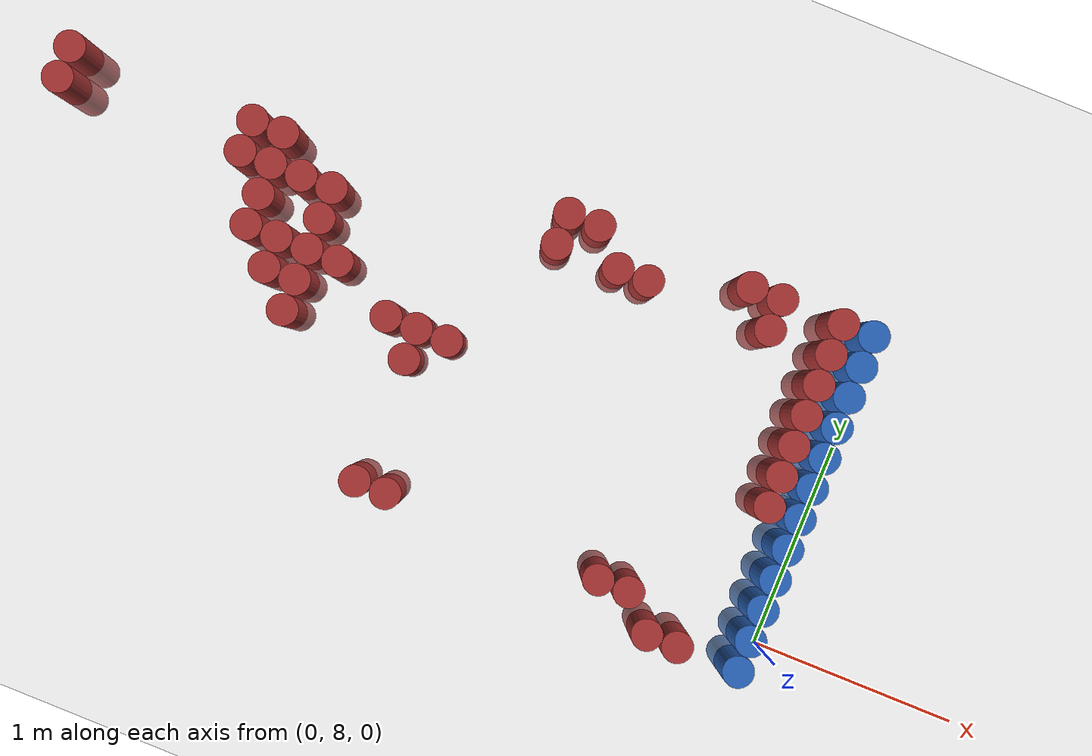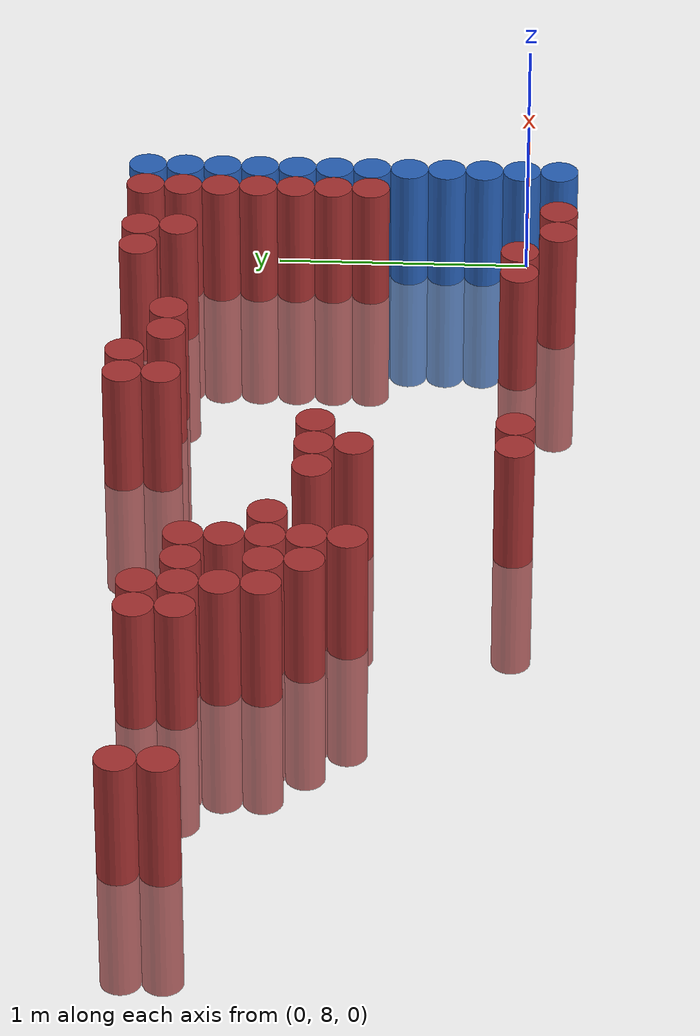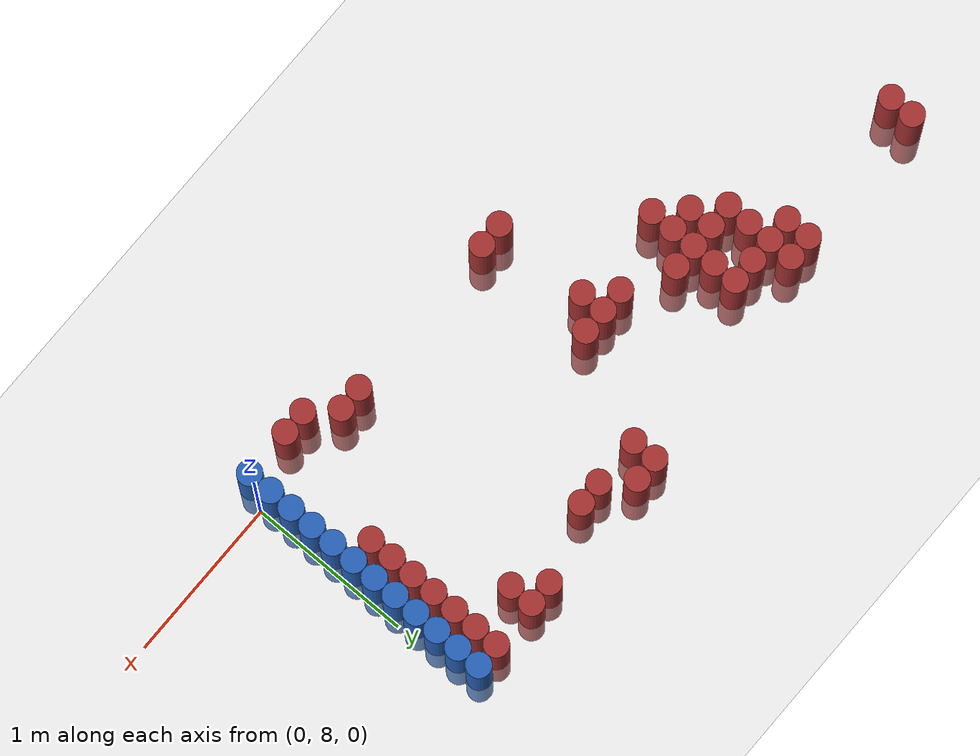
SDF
<sdf version="1.6">
 <world name="default">
  <model name="ground_plane">
   <static>1</static>
   <link name="link">
    <collision name="collision">
     <geometry><plane><normal>0 0 1</normal><size>100 100</size></plane></geometry>
     <surface><friction><ode><mu>100</mu><mu2>50</mu2></ode></friction></surface>
    </collision>
    <visual name="visual">
     <cast_shadows>0</cast_shadows>
     <geometry><plane><normal>0 0 1</normal><size>100 100</size></plane></geometry>
     <material>
      <script><uri>file://media/materials/scripts/gazebo.material</uri><name>Gazebo/Grey</name></script>
     </material>
    </visual>
   </link>
  </model>
  <model name="unit_cylinder_156">
   <static>1</static>
   <pose>-3.975000 9.225000 0.000000 0.000000 0.000000 0.000000</pose>
   <link name="link">
    <inertial>
     <mass>1</mass>
     <inertia><ixx>0.145833</ixx><ixy>0</ixy><ixz>0</ixz><iyy>0.145833</iyy><iyz>0</iyz><izz>0.125</izz></inertia>
    </inertial>
    <collision name="collision">
     <geometry><cylinder><radius>0.075000</radius><length>1</length></cylinder></geometry>
    </collision>
    <visual name="visual">
     <geometry><cylinder><radius>0.075000</radius><length>1</length></cylinder></geometry>
     <material>
      <ambient>0.648000 0.192000 0.192000 1</ambient>
      <diffuse>0.648000 0.192000 0.192000 1</diffuse>
     </material>
     <material>
      <script><name>Gazebo/Grey</name><uri>file://media/materials/scripts/gazebo.material</uri></script>
     </material>
    </visual>
   </link>
  </model>
  <model name="unit_cylinder_157">
   <static>1</static>
   <pose>-3.975000 9.375000 0.000000 0.000000 0.000000 0.000000</pose>
   <link name="link">
    <inertial>
     <mass>1</mass>
     <inertia><ixx>0.145833</ixx><ixy>0</ixy><ixz>0</ixz><iyy>0.145833</iyy><iyz>0</iyz><izz>0.125</izz></inertia>
    </inertial>
    <collision name="collision">
     <geometry><cylinder><radius>0.075000</radius><length>1</length></cylinder></geometry>
    </collision>
    <visual name="visual">
     <geometry><cylinder><radius>0.075000</radius><length>1</length></cylinder></geometry>
     <material>
      <ambient>0.648000 0.192000 0.192000 1</ambient>
      <diffuse>0.648000 0.192000 0.192000 1</diffuse>
     </material>
     <material>
      <script><name>Gazebo/Grey</name><uri>file://media/materials/scripts/gazebo.material</uri></script>
     </material>
    </visual>
   </link>
  </model>
  <model name="unit_cylinder_171">
   <static>1</static>
   <pose>-3.075000 9.225000 0.000000 0.000000 0.000000 0.000000</pose>
   <link name="link">
    <inertial>
     <mass>1</mass>
     <inertia><ixx>0.145833</ixx><ixy>0</ixy><ixz>0</ixz><iyy>0.145833</iyy><iyz>0</iyz><izz>0.125</izz></inertia>
    </inertial>
    <collision name="collision">
     <geometry><cylinder><radius>0.075000</radius><length>1</length></cylinder></geometry>
    </collision>
    <visual name="visual">
     <geometry><cylinder><radius>0.075000</radius><length>1</length></cylinder></geometry>
     <material>
      <ambient>0.648000 0.192000 0.192000 1</ambient>
      <diffuse>0.648000 0.192000 0.192000 1</diffuse>
     </material>
     <material>
      <script><name>Gazebo/Grey</name><uri>file://media/materials/scripts/gazebo.material</uri></script>
     </material>
    </visual>
   </link>
  </model>
  <model name="unit_cylinder_172">
   <static>1</static>
   <pose>-3.075000 9.375000 0.000000 0.000000 0.000000 0.000000</pose>
   <link name="link">
    <inertial>
     <mass>1</mass>
     <inertia><ixx>0.145833</ixx><ixy>0</ixy><ixz>0</ixz><iyy>0.145833</iyy><iyz>0</iyz><izz>0.125</izz></inertia>
    </inertial>
    <collision name="collision">
     <geometry><cylinder><radius>0.075000</radius><length>1</length></cylinder></geometry>
    </collision>
    <visual name="visual">
     <geometry><cylinder><radius>0.075000</radius><length>1</length></cylinder></geometry>
     <material>
      <ambient>0.648000 0.192000 0.192000 1</ambient>
      <diffuse>0.648000 0.192000 0.192000 1</diffuse>
     </material>
     <material>
      <script><name>Gazebo/Grey</name><uri>file://media/materials/scripts/gazebo.material</uri></script>
     </material>
    </visual>
   </link>
  </model>
  <model name="unit_cylinder_173">
   <static>1</static>
   <pose>-2.925000 8.925000 0.000000 0.000000 0.000000 0.000000</pose>
   <link name="link">
    <inertial>
     <mass>1</mass>
     <inertia><ixx>0.145833</ixx><ixy>0</ixy><ixz>0</ixz><iyy>0.145833</iyy><iyz>0</iyz><izz>0.125</izz></inertia>
    </inertial>
    <collision name="collision">
     <geometry><cylinder><radius>0.075000</radius><length>1</length></cylinder></geometry>
    </collision>
    <visual name="visual">
     <geometry><cylinder><radius>0.075000</radius><length>1</length></cylinder></geometry>
     <material>
      <ambient>0.648000 0.192000 0.192000 1</ambient>
      <diffuse>0.648000 0.192000 0.192000 1</diffuse>
     </material>
     <material>
      <script><name>Gazebo/Grey</name><uri>file://media/materials/scripts/gazebo.material</uri></script>
     </material>
    </visual>
   </link>
  </model>
  <model name="unit_cylinder_174">
   <static>1</static>
   <pose>-2.925000 9.075000 0.000000 0.000000 0.000000 0.000000</pose>
   <link name="link">
    <inertial>
     <mass>1</mass>
     <inertia><ixx>0.145833</ixx><ixy>0</ixy><ixz>0</ixz><iyy>0.145833</iyy><iyz>0</iyz><izz>0.125</izz></inertia>
    </inertial>
    <collision name="collision">
     <geometry><cylinder><radius>0.075000</radius><length>1</length></cylinder></geometry>
    </collision>
    <visual name="visual">
     <geometry><cylinder><radius>0.075000</radius><length>1</length></cylinder></geometry>
     <material>
      <ambient>0.648000 0.192000 0.192000 1</ambient>
      <diffuse>0.648000 0.192000 0.192000 1</diffuse>
     </material>
     <material>
      <script><name>Gazebo/Grey</name><uri>file://media/materials/scripts/gazebo.material</uri></script>
     </material>
    </visual>
   </link>
  </model>
  <model name="unit_cylinder_175">
   <static>1</static>
   <pose>-2.925000 9.225000 0.000000 0.000000 0.000000 0.000000</pose>
   <link name="link">
    <inertial>
     <mass>1</mass>
     <inertia><ixx>0.145833</ixx><ixy>0</ixy><ixz>0</ixz><iyy>0.145833</iyy><iyz>0</iyz><izz>0.125</izz></inertia>
    </inertial>
    <collision name="collision">
     <geometry><cylinder><radius>0.075000</radius><length>1</length></cylinder></geometry>
    </collision>
    <visual name="visual">
     <geometry><cylinder><radius>0.075000</radius><length>1</length></cylinder></geometry>
     <material>
      <ambient>0.648000 0.192000 0.192000 1</ambient>
      <diffuse>0.648000 0.192000 0.192000 1</diffuse>
     </material>
     <material>
      <script><name>Gazebo/Grey</name><uri>file://media/materials/scripts/gazebo.material</uri></script>
     </material>
    </visual>
   </link>
  </model>
  <model name="unit_cylinder_176">
   <static>1</static>
   <pose>-2.925000 9.375000 0.000000 0.000000 0.000000 0.000000</pose>
   <link name="link">
    <inertial>
     <mass>1</mass>
     <inertia><ixx>0.145833</ixx><ixy>0</ixy><ixz>0</ixz><iyy>0.145833</iyy><iyz>0</iyz><izz>0.125</izz></inertia>
    </inertial>
    <collision name="collision">
     <geometry><cylinder><radius>0.075000</radius><length>1</length></cylinder></geometry>
    </collision>
    <visual name="visual">
     <geometry><cylinder><radius>0.075000</radius><length>1</length></cylinder></geometry>
     <material>
      <ambient>0.648000 0.192000 0.192000 1</ambient>
      <diffuse>0.648000 0.192000 0.192000 1</diffuse>
     </material>
     <material>
      <script><name>Gazebo/Grey</name><uri>file://media/materials/scripts/gazebo.material</uri></script>
     </material>
    </visual>
   </link>
  </model>
  <model name="unit_cylinder_178">
   <static>1</static>
   <pose>-2.775000 8.775000 0.000000 0.000000 0.000000 0.000000</pose>
   <link name="link">
    <inertial>
     <mass>1</mass>
     <inertia><ixx>0.145833</ixx><ixy>0</ixy><ixz>0</ixz><iyy>0.145833</iyy><iyz>0</iyz><izz>0.125</izz></inertia>
    </inertial>
    <collision name="collision">
     <geometry><cylinder><radius>0.075000</radius><length>1</length></cylinder></geometry>
    </collision>
    <visual name="visual">
     <geometry><cylinder><radius>0.075000</radius><length>1</length></cylinder></geometry>
     <material>
      <ambient>0.648000 0.192000 0.192000 1</ambient>
      <diffuse>0.648000 0.192000 0.192000 1</diffuse>
     </material>
     <material>
      <script><name>Gazebo/Grey</name><uri>file://media/materials/scripts/gazebo.material</uri></script>
     </material>
    </visual>
   </link>
  </model>
  <model name="unit_cylinder_179">
   <static>1</static>
   <pose>-2.775000 8.925000 0.000000 0.000000 0.000000 0.000000</pose>
   <link name="link">
    <inertial>
     <mass>1</mass>
     <inertia><ixx>0.145833</ixx><ixy>0</ixy><ixz>0</ixz><iyy>0.145833</iyy><iyz>0</iyz><izz>0.125</izz></inertia>
    </inertial>
    <collision name="collision">
     <geometry><cylinder><radius>0.075000</radius><length>1</length></cylinder></geometry>
    </collision>
    <visual name="visual">
     <geometry><cylinder><radius>0.075000</radius><length>1</length></cylinder></geometry>
     <material>
      <ambient>0.648000 0.192000 0.192000 1</ambient>
      <diffuse>0.648000 0.192000 0.192000 1</diffuse>
     </material>
     <material>
      <script><name>Gazebo/Grey</name><uri>file://media/materials/scripts/gazebo.material</uri></script>
     </material>
    </visual>
   </link>
  </model>
  <model name="unit_cylinder_180">
   <static>1</static>
   <pose>-2.775000 9.225000 0.000000 0.000000 0.000000 0.000000</pose>
   <link name="link">
    <inertial>
     <mass>1</mass>
     <inertia><ixx>0.145833</ixx><ixy>0</ixy><ixz>0</ixz><iyy>0.145833</iyy><iyz>0</iyz><izz>0.125</izz></inertia>
    </inertial>
    <collision name="collision">
     <geometry><cylinder><radius>0.075000</radius><length>1</length></cylinder></geometry>
    </collision>
    <visual name="visual">
     <geometry><cylinder><radius>0.075000</radius><length>1</length></cylinder></geometry>
     <material>
      <ambient>0.648000 0.192000 0.192000 1</ambient>
      <diffuse>0.648000 0.192000 0.192000 1</diffuse>
     </material>
     <material>
      <script><name>Gazebo/Grey</name><uri>file://media/materials/scripts/gazebo.material</uri></script>
     </material>
    </visual>
   </link>
  </model>
  <model name="unit_cylinder_182">
   <static>1</static>
   <pose>-2.625000 8.625000 0.000000 0.000000 0.000000 0.000000</pose>
   <link name="link">
    <inertial>
     <mass>1</mass>
     <inertia><ixx>0.145833</ixx><ixy>0</ixy><ixz>0</ixz><iyy>0.145833</iyy><iyz>0</iyz><izz>0.125</izz></inertia>
    </inertial>
    <collision name="collision">
     <geometry><cylinder><radius>0.075000</radius><length>1</length></cylinder></geometry>
    </collision>
    <visual name="visual">
     <geometry><cylinder><radius>0.075000</radius><length>1</length></cylinder></geometry>
     <material>
      <ambient>0.648000 0.192000 0.192000 1</ambient>
      <diffuse>0.648000 0.192000 0.192000 1</diffuse>
     </material>
     <material>
      <script><name>Gazebo/Grey</name><uri>file://media/materials/scripts/gazebo.material</uri></script>
     </material>
    </visual>
   </link>
  </model>
  <model name="unit_cylinder_183">
   <static>1</static>
   <pose>-2.625000 8.775000 0.000000 0.000000 0.000000 0.000000</pose>
   <link name="link">
    <inertial>
     <mass>1</mass>
     <inertia><ixx>0.145833</ixx><ixy>0</ixy><ixz>0</ixz><iyy>0.145833</iyy><iyz>0</iyz><izz>0.125</izz></inertia>
    </inertial>
    <collision name="collision">
     <geometry><cylinder><radius>0.075000</radius><length>1</length></cylinder></geometry>
    </collision>
    <visual name="visual">
     <geometry><cylinder><radius>0.075000</radius><length>1</length></cylinder></geometry>
     <material>
      <ambient>0.648000 0.192000 0.192000 1</ambient>
      <diffuse>0.648000 0.192000 0.192000 1</diffuse>
     </material>
     <material>
      <script><name>Gazebo/Grey</name><uri>file://media/materials/scripts/gazebo.material</uri></script>
     </material>
    </visual>
   </link>
  </model>
  <model name="unit_cylinder_184">
   <static>1</static>
   <pose>-2.625000 8.925000 0.000000 0.000000 0.000000 0.000000</pose>
   <link name="link">
    <inertial>
     <mass>1</mass>
     <inertia><ixx>0.145833</ixx><ixy>0</ixy><ixz>0</ixz><iyy>0.145833</iyy><iyz>0</iyz><izz>0.125</izz></inertia>
    </inertial>
    <collision name="collision">
     <geometry><cylinder><radius>0.075000</radius><length>1</length></cylinder></geometry>
    </collision>
    <visual name="visual">
     <geometry><cylinder><radius>0.075000</radius><length>1</length></cylinder></geometry>
     <material>
      <ambient>0.648000 0.192000 0.192000 1</ambient>
      <diffuse>0.648000 0.192000 0.192000 1</diffuse>
     </material>
     <material>
      <script><name>Gazebo/Grey</name><uri>file://media/materials/scripts/gazebo.material</uri></script>
     </material>
    </visual>
   </link>
  </model>
  <model name="unit_cylinder_185">
   <static>1</static>
   <pose>-2.625000 9.075000 0.000000 0.000000 0.000000 0.000000</pose>
   <link name="link">
    <inertial>
     <mass>1</mass>
     <inertia><ixx>0.145833</ixx><ixy>0</ixy><ixz>0</ixz><iyy>0.145833</iyy><iyz>0</iyz><izz>0.125</izz></inertia>
    </inertial>
    <collision name="collision">
     <geometry><cylinder><radius>0.075000</radius><length>1</length></cylinder></geometry>
    </collision>
    <visual name="visual">
     <geometry><cylinder><radius>0.075000</radius><length>1</length></cylinder></geometry>
     <material>
      <ambient>0.648000 0.192000 0.192000 1</ambient>
      <diffuse>0.648000 0.192000 0.192000 1</diffuse>
     </material>
     <material>
      <script><name>Gazebo/Grey</name><uri>file://media/materials/scripts/gazebo.material</uri></script>
     </material>
    </visual>
   </link>
  </model>
  <model name="unit_cylinder_186">
   <static>1</static>
   <pose>-2.625000 9.225000 0.000000 0.000000 0.000000 0.000000</pose>
   <link name="link">
    <inertial>
     <mass>1</mass>
     <inertia><ixx>0.145833</ixx><ixy>0</ixy><ixz>0</ixz><iyy>0.145833</iyy><iyz>0</iyz><izz>0.125</izz></inertia>
    </inertial>
    <collision name="collision">
     <geometry><cylinder><radius>0.075000</radius><length>1</length></cylinder></geometry>
    </collision>
    <visual name="visual">
     <geometry><cylinder><radius>0.075000</radius><length>1</length></cylinder></geometry>
     <material>
      <ambient>0.648000 0.192000 0.192000 1</ambient>
      <diffuse>0.648000 0.192000 0.192000 1</diffuse>
     </material>
     <material>
      <script><name>Gazebo/Grey</name><uri>file://media/materials/scripts/gazebo.material</uri></script>
     </material>
    </visual>
   </link>
  </model>
  <model name="unit_cylinder_187">
   <static>1</static>
   <pose>-2.475000 8.925000 0.000000 0.000000 0.000000 0.000000</pose>
   <link name="link">
    <inertial>
     <mass>1</mass>
     <inertia><ixx>0.145833</ixx><ixy>0</ixy><ixz>0</ixz><iyy>0.145833</iyy><iyz>0</iyz><izz>0.125</izz></inertia>
    </inertial>
    <collision name="collision">
     <geometry><cylinder><radius>0.075000</radius><length>1</length></cylinder></geometry>
    </collision>
    <visual name="visual">
     <geometry><cylinder><radius>0.075000</radius><length>1</length></cylinder></geometry>
     <material>
      <ambient>0.648000 0.192000 0.192000 1</ambient>
      <diffuse>0.648000 0.192000 0.192000 1</diffuse>
     </material>
     <material>
      <script><name>Gazebo/Grey</name><uri>file://media/materials/scripts/gazebo.material</uri></script>
     </material>
    </visual>
   </link>
  </model>
  <model name="unit_cylinder_189">
   <static>1</static>
   <pose>-2.175000 8.775000 0.000000 0.000000 0.000000 0.000000</pose>
   <link name="link">
    <inertial>
     <mass>1</mass>
     <inertia><ixx>0.145833</ixx><ixy>0</ixy><ixz>0</ixz><iyy>0.145833</iyy><iyz>0</iyz><izz>0.125</izz></inertia>
    </inertial>
    <collision name="collision">
     <geometry><cylinder><radius>0.075000</radius><length>1</length></cylinder></geometry>
    </collision>
    <visual name="visual">
     <geometry><cylinder><radius>0.075000</radius><length>1</length></cylinder></geometry>
     <material>
      <ambient>0.648000 0.192000 0.192000 1</ambient>
      <diffuse>0.648000 0.192000 0.192000 1</diffuse>
     </material>
     <material>
      <script><name>Gazebo/Grey</name><uri>file://media/materials/scripts/gazebo.material</uri></script>
     </material>
    </visual>
   </link>
  </model>
  <model name="unit_cylinder_191">
   <static>1</static>
   <pose>-2.025000 8.025000 0.000000 0.000000 0.000000 0.000000</pose>
   <link name="link">
    <inertial>
     <mass>1</mass>
     <inertia><ixx>0.145833</ixx><ixy>0</ixy><ixz>0</ixz><iyy>0.145833</iyy><iyz>0</iyz><izz>0.125</izz></inertia>
    </inertial>
    <collision name="collision">
     <geometry><cylinder><radius>0.075000</radius><length>1</length></cylinder></geometry>
    </collision>
    <visual name="visual">
     <geometry><cylinder><radius>0.075000</radius><length>1</length></cylinder></geometry>
     <material>
      <ambient>0.648000 0.192000 0.192000 1</ambient>
      <diffuse>0.648000 0.192000 0.192000 1</diffuse>
     </material>
     <material>
      <script><name>Gazebo/Grey</name><uri>file://media/materials/scripts/gazebo.material</uri></script>
     </material>
    </visual>
   </link>
  </model>
  <model name="unit_cylinder_192">
   <static>1</static>
   <pose>-2.025000 8.625000 0.000000 0.000000 0.000000 0.000000</pose>
   <link name="link">
    <inertial>
     <mass>1</mass>
     <inertia><ixx>0.145833</ixx><ixy>0</ixy><ixz>0</ixz><iyy>0.145833</iyy><iyz>0</iyz><izz>0.125</izz></inertia>
    </inertial>
    <collision name="collision">
     <geometry><cylinder><radius>0.075000</radius><length>1</length></cylinder></geometry>
    </collision>
    <visual name="visual">
     <geometry><cylinder><radius>0.075000</radius><length>1</length></cylinder></geometry>
     <material>
      <ambient>0.648000 0.192000 0.192000 1</ambient>
      <diffuse>0.648000 0.192000 0.192000 1</diffuse>
     </material>
     <material>
      <script><name>Gazebo/Grey</name><uri>file://media/materials/scripts/gazebo.material</uri></script>
     </material>
    </visual>
   </link>
  </model>
  <model name="unit_cylinder_193">
   <static>1</static>
   <pose>-2.025000 8.775000 0.000000 0.000000 0.000000 0.000000</pose>
   <link name="link">
    <inertial>
     <mass>1</mass>
     <inertia><ixx>0.145833</ixx><ixy>0</ixy><ixz>0</ixz><iyy>0.145833</iyy><iyz>0</iyz><izz>0.125</izz></inertia>
    </inertial>
    <collision name="collision">
     <geometry><cylinder><radius>0.075000</radius><length>1</length></cylinder></geometry>
    </collision>
    <visual name="visual">
     <geometry><cylinder><radius>0.075000</radius><length>1</length></cylinder></geometry>
     <material>
      <ambient>0.648000 0.192000 0.192000 1</ambient>
      <diffuse>0.648000 0.192000 0.192000 1</diffuse>
     </material>
     <material>
      <script><name>Gazebo/Grey</name><uri>file://media/materials/scripts/gazebo.material</uri></script>
     </material>
    </visual>
   </link>
  </model>
  <model name="unit_cylinder_194">
   <static>1</static>
   <pose>-1.875000 8.025000 0.000000 0.000000 0.000000 0.000000</pose>
   <link name="link">
    <inertial>
     <mass>1</mass>
     <inertia><ixx>0.145833</ixx><ixy>0</ixy><ixz>0</ixz><iyy>0.145833</iyy><iyz>0</iyz><izz>0.125</izz></inertia>
    </inertial>
    <collision name="collision">
     <geometry><cylinder><radius>0.075000</radius><length>1</length></cylinder></geometry>
    </collision>
    <visual name="visual">
     <geometry><cylinder><radius>0.075000</radius><length>1</length></cylinder></geometry>
     <material>
      <ambient>0.648000 0.192000 0.192000 1</ambient>
      <diffuse>0.648000 0.192000 0.192000 1</diffuse>
     </material>
     <material>
      <script><name>Gazebo/Grey</name><uri>file://media/materials/scripts/gazebo.material</uri></script>
     </material>
    </visual>
   </link>
  </model>
  <model name="unit_cylinder_195">
   <static>1</static>
   <pose>-1.875000 8.775000 0.000000 0.000000 0.000000 0.000000</pose>
   <link name="link">
    <inertial>
     <mass>1</mass>
     <inertia><ixx>0.145833</ixx><ixy>0</ixy><ixz>0</ixz><iyy>0.145833</iyy><iyz>0</iyz><izz>0.125</izz></inertia>
    </inertial>
    <collision name="collision">
     <geometry><cylinder><radius>0.075000</radius><length>1</length></cylinder></geometry>
    </collision>
    <visual name="visual">
     <geometry><cylinder><radius>0.075000</radius><length>1</length></cylinder></geometry>
     <material>
      <ambient>0.648000 0.192000 0.192000 1</ambient>
      <diffuse>0.648000 0.192000 0.192000 1</diffuse>
     </material>
     <material>
      <script><name>Gazebo/Grey</name><uri>file://media/materials/scripts/gazebo.material</uri></script>
     </material>
    </visual>
   </link>
  </model>
  <model name="unit_cylinder_200">
   <static>1</static>
   <pose>-1.575000 9.375000 0.000000 0.000000 0.000000 0.000000</pose>
   <link name="link">
    <inertial>
     <mass>1</mass>
     <inertia><ixx>0.145833</ixx><ixy>0</ixy><ixz>0</ixz><iyy>0.145833</iyy><iyz>0</iyz><izz>0.125</izz></inertia>
    </inertial>
    <collision name="collision">
     <geometry><cylinder><radius>0.075000</radius><length>1</length></cylinder></geometry>
    </collision>
    <visual name="visual">
     <geometry><cylinder><radius>0.075000</radius><length>1</length></cylinder></geometry>
     <material>
      <ambient>0.648000 0.192000 0.192000 1</ambient>
      <diffuse>0.648000 0.192000 0.192000 1</diffuse>
     </material>
     <material>
      <script><name>Gazebo/Grey</name><uri>file://media/materials/scripts/gazebo.material</uri></script>
     </material>
    </visual>
   </link>
  </model>
  <model name="unit_cylinder_201">
   <static>1</static>
   <pose>-1.575000 9.525000 0.000000 0.000000 0.000000 0.000000</pose>
   <link name="link">
    <inertial>
     <mass>1</mass>
     <inertia><ixx>0.145833</ixx><ixy>0</ixy><ixz>0</ixz><iyy>0.145833</iyy><iyz>0</iyz><izz>0.125</izz></inertia>
    </inertial>
    <collision name="collision">
     <geometry><cylinder><radius>0.075000</radius><length>1</length></cylinder></geometry>
    </collision>
    <visual name="visual">
     <geometry><cylinder><radius>0.075000</radius><length>1</length></cylinder></geometry>
     <material>
      <ambient>0.648000 0.192000 0.192000 1</ambient>
      <diffuse>0.648000 0.192000 0.192000 1</diffuse>
     </material>
     <material>
      <script><name>Gazebo/Grey</name><uri>file://media/materials/scripts/gazebo.material</uri></script>
     </material>
    </visual>
   </link>
  </model>
  <model name="unit_cylinder_205">
   <static>1</static>
   <pose>-1.425000 9.525000 0.000000 0.000000 0.000000 0.000000</pose>
   <link name="link">
    <inertial>
     <mass>1</mass>
     <inertia><ixx>0.145833</ixx><ixy>0</ixy><ixz>0</ixz><iyy>0.145833</iyy><iyz>0</iyz><izz>0.125</izz></inertia>
    </inertial>
    <collision name="collision">
     <geometry><cylinder><radius>0.075000</radius><length>1</length></cylinder></geometry>
    </collision>
    <visual name="visual">
     <geometry><cylinder><radius>0.075000</radius><length>1</length></cylinder></geometry>
     <material>
      <ambient>0.648000 0.192000 0.192000 1</ambient>
      <diffuse>0.648000 0.192000 0.192000 1</diffuse>
     </material>
     <material>
      <script><name>Gazebo/Grey</name><uri>file://media/materials/scripts/gazebo.material</uri></script>
     </material>
    </visual>
   </link>
  </model>
  <model name="unit_cylinder_208">
   <static>1</static>
   <pose>-1.275000 9.375000 0.000000 0.000000 0.000000 0.000000</pose>
   <link name="link">
    <inertial>
     <mass>1</mass>
     <inertia><ixx>0.145833</ixx><ixy>0</ixy><ixz>0</ixz><iyy>0.145833</iyy><iyz>0</iyz><izz>0.125</izz></inertia>
    </inertial>
    <collision name="collision">
     <geometry><cylinder><radius>0.075000</radius><length>1</length></cylinder></geometry>
    </collision>
    <visual name="visual">
     <geometry><cylinder><radius>0.075000</radius><length>1</length></cylinder></geometry>
     <material>
      <ambient>0.648000 0.192000 0.192000 1</ambient>
      <diffuse>0.648000 0.192000 0.192000 1</diffuse>
     </material>
     <material>
      <script><name>Gazebo/Grey</name><uri>file://media/materials/scripts/gazebo.material</uri></script>
     </material>
    </visual>
   </link>
  </model>
  <model name="unit_cylinder_209">
   <static>1</static>
   <pose>-1.125000 9.375000 0.000000 0.000000 0.000000 0.000000</pose>
   <link name="link">
    <inertial>
     <mass>1</mass>
     <inertia><ixx>0.145833</ixx><ixy>0</ixy><ixz>0</ixz><iyy>0.145833</iyy><iyz>0</iyz><izz>0.125</izz></inertia>
    </inertial>
    <collision name="collision">
     <geometry><cylinder><radius>0.075000</radius><length>1</length></cylinder></geometry>
    </collision>
    <visual name="visual">
     <geometry><cylinder><radius>0.075000</radius><length>1</length></cylinder></geometry>
     <material>
      <ambient>0.648000 0.192000 0.192000 1</ambient>
      <diffuse>0.648000 0.192000 0.192000 1</diffuse>
     </material>
     <material>
      <script><name>Gazebo/Grey</name><uri>file://media/materials/scripts/gazebo.material</uri></script>
     </material>
    </visual>
   </link>
  </model>
  <model name="unit_cylinder_212">
   <static>1</static>
   <pose>-0.825000 8.025000 0.000000 0.000000 0.000000 0.000000</pose>
   <link name="link">
    <inertial>
     <mass>1</mass>
     <inertia><ixx>0.145833</ixx><ixy>0</ixy><ixz>0</ixz><iyy>0.145833</iyy><iyz>0</iyz><izz>0.125</izz></inertia>
    </inertial>
    <collision name="collision">
     <geometry><cylinder><radius>0.075000</radius><length>1</length></cylinder></geometry>
    </collision>
    <visual name="visual">
     <geometry><cylinder><radius>0.075000</radius><length>1</length></cylinder></geometry>
     <material>
      <ambient>0.648000 0.192000 0.192000 1</ambient>
      <diffuse>0.648000 0.192000 0.192000 1</diffuse>
     </material>
     <material>
      <script><name>Gazebo/Grey</name><uri>file://media/materials/scripts/gazebo.material</uri></script>
     </material>
    </visual>
   </link>
  </model>
  <model name="unit_cylinder_214">
   <static>1</static>
   <pose>-0.675000 8.025000 0.000000 0.000000 0.000000 0.000000</pose>
   <link name="link">
    <inertial>
     <mass>1</mass>
     <inertia><ixx>0.145833</ixx><ixy>0</ixy><ixz>0</ixz><iyy>0.145833</iyy><iyz>0</iyz><izz>0.125</izz></inertia>
    </inertial>
    <collision name="collision">
     <geometry><cylinder><radius>0.075000</radius><length>1</length></cylinder></geometry>
    </collision>
    <visual name="visual">
     <geometry><cylinder><radius>0.075000</radius><length>1</length></cylinder></geometry>
     <material>
      <ambient>0.648000 0.192000 0.192000 1</ambient>
      <diffuse>0.648000 0.192000 0.192000 1</diffuse>
     </material>
     <material>
      <script><name>Gazebo/Grey</name><uri>file://media/materials/scripts/gazebo.material</uri></script>
     </material>
    </visual>
   </link>
  </model>
  <model name="unit_cylinder_215">
   <static>1</static>
   <pose>-0.675000 9.525000 0.000000 0.000000 0.000000 0.000000</pose>
   <link name="link">
    <inertial>
     <mass>1</mass>
     <inertia><ixx>0.145833</ixx><ixy>0</ixy><ixz>0</ixz><iyy>0.145833</iyy><iyz>0</iyz><izz>0.125</izz></inertia>
    </inertial>
    <collision name="collision">
     <geometry><cylinder><radius>0.075000</radius><length>1</length></cylinder></geometry>
    </collision>
    <visual name="visual">
     <geometry><cylinder><radius>0.075000</radius><length>1</length></cylinder></geometry>
     <material>
      <ambient>0.648000 0.192000 0.192000 1</ambient>
      <diffuse>0.648000 0.192000 0.192000 1</diffuse>
     </material>
     <material>
      <script><name>Gazebo/Grey</name><uri>file://media/materials/scripts/gazebo.material</uri></script>
     </material>
    </visual>
   </link>
  </model>
  <model name="unit_cylinder_217">
   <static>1</static>
   <pose>-0.525000 7.875000 0.000000 0.000000 0.000000 0.000000</pose>
   <link name="link">
    <inertial>
     <mass>1</mass>
     <inertia><ixx>0.145833</ixx><ixy>0</ixy><ixz>0</ixz><iyy>0.145833</iyy><iyz>0</iyz><izz>0.125</izz></inertia>
    </inertial>
    <collision name="collision">
     <geometry><cylinder><radius>0.075000</radius><length>1</length></cylinder></geometry>
    </collision>
    <visual name="visual">
     <geometry><cylinder><radius>0.075000</radius><length>1</length></cylinder></geometry>
     <material>
      <ambient>0.648000 0.192000 0.192000 1</ambient>
      <diffuse>0.648000 0.192000 0.192000 1</diffuse>
     </material>
     <material>
      <script><name>Gazebo/Grey</name><uri>file://media/materials/scripts/gazebo.material</uri></script>
     </material>
    </visual>
   </link>
  </model>
  <model name="unit_cylinder_218">
   <static>1</static>
   <pose>-0.525000 9.375000 0.000000 0.000000 0.000000 0.000000</pose>
   <link name="link">
    <inertial>
     <mass>1</mass>
     <inertia><ixx>0.145833</ixx><ixy>0</ixy><ixz>0</ixz><iyy>0.145833</iyy><iyz>0</iyz><izz>0.125</izz></inertia>
    </inertial>
    <collision name="collision">
     <geometry><cylinder><radius>0.075000</radius><length>1</length></cylinder></geometry>
    </collision>
    <visual name="visual">
     <geometry><cylinder><radius>0.075000</radius><length>1</length></cylinder></geometry>
     <material>
      <ambient>0.648000 0.192000 0.192000 1</ambient>
      <diffuse>0.648000 0.192000 0.192000 1</diffuse>
     </material>
     <material>
      <script><name>Gazebo/Grey</name><uri>file://media/materials/scripts/gazebo.material</uri></script>
     </material>
    </visual>
   </link>
  </model>
  <model name="unit_cylinder_219">
   <static>1</static>
   <pose>-0.525000 9.525000 0.000000 0.000000 0.000000 0.000000</pose>
   <link name="link">
    <inertial>
     <mass>1</mass>
     <inertia><ixx>0.145833</ixx><ixy>0</ixy><ixz>0</ixz><iyy>0.145833</iyy><iyz>0</iyz><izz>0.125</izz></inertia>
    </inertial>
    <collision name="collision">
     <geometry><cylinder><radius>0.075000</radius><length>1</length></cylinder></geometry>
    </collision>
    <visual name="visual">
     <geometry><cylinder><radius>0.075000</radius><length>1</length></cylinder></geometry>
     <material>
      <ambient>0.648000 0.192000 0.192000 1</ambient>
      <diffuse>0.648000 0.192000 0.192000 1</diffuse>
     </material>
     <material>
      <script><name>Gazebo/Grey</name><uri>file://media/materials/scripts/gazebo.material</uri></script>
     </material>
    </visual>
   </link>
  </model>
  <model name="unit_cylinder_221">
   <static>1</static>
   <pose>-0.375000 7.875000 0.000000 0.000000 0.000000 0.000000</pose>
   <link name="link">
    <inertial>
     <mass>1</mass>
     <inertia><ixx>0.145833</ixx><ixy>0</ixy><ixz>0</ixz><iyy>0.145833</iyy><iyz>0</iyz><izz>0.125</izz></inertia>
    </inertial>
    <collision name="collision">
     <geometry><cylinder><radius>0.075000</radius><length>1</length></cylinder></geometry>
    </collision>
    <visual name="visual">
     <geometry><cylinder><radius>0.075000</radius><length>1</length></cylinder></geometry>
     <material>
      <ambient>0.648000 0.192000 0.192000 1</ambient>
      <diffuse>0.648000 0.192000 0.192000 1</diffuse>
     </material>
     <material>
      <script><name>Gazebo/Grey</name><uri>file://media/materials/scripts/gazebo.material</uri></script>
     </material>
    </visual>
   </link>
  </model>
  <model name="unit_cylinder_231">
   <static>1</static>
   <pose>-0.225000 8.625000 0.000000 0.000000 0.000000 0.000000</pose>
   <link name="link">
    <inertial>
     <mass>1</mass>
     <inertia><ixx>0.145833</ixx><ixy>0</ixy><ixz>0</ixz><iyy>0.145833</iyy><iyz>0</iyz><izz>0.125</izz></inertia>
    </inertial>
    <collision name="collision">
     <geometry><cylinder><radius>0.075000</radius><length>1</length></cylinder></geometry>
    </collision>
    <visual name="visual">
     <geometry><cylinder><radius>0.075000</radius><length>1</length></cylinder></geometry>
     <material>
      <ambient>0.648000 0.192000 0.192000 1</ambient>
      <diffuse>0.648000 0.192000 0.192000 1</diffuse>
     </material>
     <material>
      <script><name>Gazebo/Grey</name><uri>file://media/materials/scripts/gazebo.material</uri></script>
     </material>
    </visual>
   </link>
  </model>
  <model name="unit_cylinder_232">
   <static>1</static>
   <pose>-0.225000 8.775000 0.000000 0.000000 0.000000 0.000000</pose>
   <link name="link">
    <inertial>
     <mass>1</mass>
     <inertia><ixx>0.145833</ixx><ixy>0</ixy><ixz>0</ixz><iyy>0.145833</iyy><iyz>0</iyz><izz>0.125</izz></inertia>
    </inertial>
    <collision name="collision">
     <geometry><cylinder><radius>0.075000</radius><length>1</length></cylinder></geometry>
    </collision>
    <visual name="visual">
     <geometry><cylinder><radius>0.075000</radius><length>1</length></cylinder></geometry>
     <material>
      <ambient>0.648000 0.192000 0.192000 1</ambient>
      <diffuse>0.648000 0.192000 0.192000 1</diffuse>
     </material>
     <material>
      <script><name>Gazebo/Grey</name><uri>file://media/materials/scripts/gazebo.material</uri></script>
     </material>
    </visual>
   </link>
  </model>
  <model name="unit_cylinder_233">
   <static>1</static>
   <pose>-0.225000 8.925000 0.000000 0.000000 0.000000 0.000000</pose>
   <link name="link">
    <inertial>
     <mass>1</mass>
     <inertia><ixx>0.145833</ixx><ixy>0</ixy><ixz>0</ixz><iyy>0.145833</iyy><iyz>0</iyz><izz>0.125</izz></inertia>
    </inertial>
    <collision name="collision">
     <geometry><cylinder><radius>0.075000</radius><length>1</length></cylinder></geometry>
    </collision>
    <visual name="visual">
     <geometry><cylinder><radius>0.075000</radius><length>1</length></cylinder></geometry>
     <material>
      <ambient>0.648000 0.192000 0.192000 1</ambient>
      <diffuse>0.648000 0.192000 0.192000 1</diffuse>
     </material>
     <material>
      <script><name>Gazebo/Grey</name><uri>file://media/materials/scripts/gazebo.material</uri></script>
     </material>
    </visual>
   </link>
  </model>
  <model name="unit_cylinder_234">
   <static>1</static>
   <pose>-0.225000 9.075000 0.000000 0.000000 0.000000 0.000000</pose>
   <link name="link">
    <inertial>
     <mass>1</mass>
     <inertia><ixx>0.145833</ixx><ixy>0</ixy><ixz>0</ixz><iyy>0.145833</iyy><iyz>0</iyz><izz>0.125</izz></inertia>
    </inertial>
    <collision name="collision">
     <geometry><cylinder><radius>0.075000</radius><length>1</length></cylinder></geometry>
    </collision>
    <visual name="visual">
     <geometry><cylinder><radius>0.075000</radius><length>1</length></cylinder></geometry>
     <material>
      <ambient>0.648000 0.192000 0.192000 1</ambient>
      <diffuse>0.648000 0.192000 0.192000 1</diffuse>
     </material>
     <material>
      <script><name>Gazebo/Grey</name><uri>file://media/materials/scripts/gazebo.material</uri></script>
     </material>
    </visual>
   </link>
  </model>
  <model name="unit_cylinder_235">
   <static>1</static>
   <pose>-0.225000 9.225000 0.000000 0.000000 0.000000 0.000000</pose>
   <link name="link">
    <inertial>
     <mass>1</mass>
     <inertia><ixx>0.145833</ixx><ixy>0</ixy><ixz>0</ixz><iyy>0.145833</iyy><iyz>0</iyz><izz>0.125</izz></inertia>
    </inertial>
    <collision name="collision">
     <geometry><cylinder><radius>0.075000</radius><length>1</length></cylinder></geometry>
    </collision>
    <visual name="visual">
     <geometry><cylinder><radius>0.075000</radius><length>1</length></cylinder></geometry>
     <material>
      <ambient>0.648000 0.192000 0.192000 1</ambient>
      <diffuse>0.648000 0.192000 0.192000 1</diffuse>
     </material>
     <material>
      <script><name>Gazebo/Grey</name><uri>file://media/materials/scripts/gazebo.material</uri></script>
     </material>
    </visual>
   </link>
  </model>
  <model name="unit_cylinder_236">
   <static>1</static>
   <pose>-0.225000 9.375000 0.000000 0.000000 0.000000 0.000000</pose>
   <link name="link">
    <inertial>
     <mass>1</mass>
     <inertia><ixx>0.145833</ixx><ixy>0</ixy><ixz>0</ixz><iyy>0.145833</iyy><iyz>0</iyz><izz>0.125</izz></inertia>
    </inertial>
    <collision name="collision">
     <geometry><cylinder><radius>0.075000</radius><length>1</length></cylinder></geometry>
    </collision>
    <visual name="visual">
     <geometry><cylinder><radius>0.075000</radius><length>1</length></cylinder></geometry>
     <material>
      <ambient>0.648000 0.192000 0.192000 1</ambient>
      <diffuse>0.648000 0.192000 0.192000 1</diffuse>
     </material>
     <material>
      <script><name>Gazebo/Grey</name><uri>file://media/materials/scripts/gazebo.material</uri></script>
     </material>
    </visual>
   </link>
  </model>
  <model name="unit_cylinder_237">
   <static>1</static>
   <pose>-0.225000 9.525000 0.000000 0.000000 0.000000 0.000000</pose>
   <link name="link">
    <inertial>
     <mass>1</mass>
     <inertia><ixx>0.145833</ixx><ixy>0</ixy><ixz>0</ixz><iyy>0.145833</iyy><iyz>0</iyz><izz>0.125</izz></inertia>
    </inertial>
    <collision name="collision">
     <geometry><cylinder><radius>0.075000</radius><length>1</length></cylinder></geometry>
    </collision>
    <visual name="visual">
     <geometry><cylinder><radius>0.075000</radius><length>1</length></cylinder></geometry>
     <material>
      <ambient>0.648000 0.192000 0.192000 1</ambient>
      <diffuse>0.648000 0.192000 0.192000 1</diffuse>
     </material>
     <material>
      <script><name>Gazebo/Grey</name><uri>file://media/materials/scripts/gazebo.material</uri></script>
     </material>
    </visual>
   </link>
  </model>
  <model name="unit_cylinder_256">
   <static>1</static>
   <pose>-0.075000 7.875000 0.000000 0.000000 0.000000 0.000000</pose>
   <link name="link">
    <inertial>
     <mass>1</mass>
     <inertia><ixx>0.145833</ixx><ixy>0</ixy><ixz>0</ixz><iyy>0.145833</iyy><iyz>0</iyz><izz>0.125</izz></inertia>
    </inertial>
    <collision name="collision">
     <geometry><cylinder><radius>0.075000</radius><length>1</length></cylinder></geometry>
    </collision>
    <visual name="visual">
     <geometry><cylinder><radius>0.075000</radius><length>1</length></cylinder></geometry>
     <material>
      <ambient>0.152000 0.379000 0.720000 1</ambient>
      <diffuse>0.152000 0.379000 0.720000 1</diffuse>
     </material>
     <material>
      <script><name>Gazebo/Grey</name><uri>file://media/materials/scripts/gazebo.material</uri></script>
     </material>
    </visual>
   </link>
  </model>
  <model name="unit_cylinder_257">
   <static>1</static>
   <pose>-0.075000 8.025000 0.000000 0.000000 0.000000 0.000000</pose>
   <link name="link">
    <inertial>
     <mass>1</mass>
     <inertia><ixx>0.145833</ixx><ixy>0</ixy><ixz>0</ixz><iyy>0.145833</iyy><iyz>0</iyz><izz>0.125</izz></inertia>
    </inertial>
    <collision name="collision">
     <geometry><cylinder><radius>0.075000</radius><length>1</length></cylinder></geometry>
    </collision>
    <visual name="visual">
     <geometry><cylinder><radius>0.075000</radius><length>1</length></cylinder></geometry>
     <material>
      <ambient>0.152000 0.379000 0.720000 1</ambient>
      <diffuse>0.152000 0.379000 0.720000 1</diffuse>
     </material>
     <material>
      <script><name>Gazebo/Grey</name><uri>file://media/materials/scripts/gazebo.material</uri></script>
     </material>
    </visual>
   </link>
  </model>
  <model name="unit_cylinder_258">
   <static>1</static>
   <pose>-0.075000 8.175000 0.000000 0.000000 0.000000 0.000000</pose>
   <link name="link">
    <inertial>
     <mass>1</mass>
     <inertia><ixx>0.145833</ixx><ixy>0</ixy><ixz>0</ixz><iyy>0.145833</iyy><iyz>0</iyz><izz>0.125</izz></inertia>
    </inertial>
    <collision name="collision">
     <geometry><cylinder><radius>0.075000</radius><length>1</length></cylinder></geometry>
    </collision>
    <visual name="visual">
     <geometry><cylinder><radius>0.075000</radius><length>1</length></cylinder></geometry>
     <material>
      <ambient>0.152000 0.379000 0.720000 1</ambient>
      <diffuse>0.152000 0.379000 0.720000 1</diffuse>
     </material>
     <material>
      <script><name>Gazebo/Grey</name><uri>file://media/materials/scripts/gazebo.material</uri></script>
     </material>
    </visual>
   </link>
  </model>
  <model name="unit_cylinder_259">
   <static>1</static>
   <pose>-0.075000 8.325000 0.000000 0.000000 0.000000 0.000000</pose>
   <link name="link">
    <inertial>
     <mass>1</mass>
     <inertia><ixx>0.145833</ixx><ixy>0</ixy><ixz>0</ixz><iyy>0.145833</iyy><iyz>0</iyz><izz>0.125</izz></inertia>
    </inertial>
    <collision name="collision">
     <geometry><cylinder><radius>0.075000</radius><length>1</length></cylinder></geometry>
    </collision>
    <visual name="visual">
     <geometry><cylinder><radius>0.075000</radius><length>1</length></cylinder></geometry>
     <material>
      <ambient>0.152000 0.379000 0.720000 1</ambient>
      <diffuse>0.152000 0.379000 0.720000 1</diffuse>
     </material>
     <material>
      <script><name>Gazebo/Grey</name><uri>file://media/materials/scripts/gazebo.material</uri></script>
     </material>
    </visual>
   </link>
  </model>
  <model name="unit_cylinder_260">
   <static>1</static>
   <pose>-0.075000 8.475000 0.000000 0.000000 0.000000 0.000000</pose>
   <link name="link">
    <inertial>
     <mass>1</mass>
     <inertia><ixx>0.145833</ixx><ixy>0</ixy><ixz>0</ixz><iyy>0.145833</iyy><iyz>0</iyz><izz>0.125</izz></inertia>
    </inertial>
    <collision name="collision">
     <geometry><cylinder><radius>0.075000</radius><length>1</length></cylinder></geometry>
    </collision>
    <visual name="visual">
     <geometry><cylinder><radius>0.075000</radius><length>1</length></cylinder></geometry>
     <material>
      <ambient>0.152000 0.379000 0.720000 1</ambient>
      <diffuse>0.152000 0.379000 0.720000 1</diffuse>
     </material>
     <material>
      <script><name>Gazebo/Grey</name><uri>file://media/materials/scripts/gazebo.material</uri></script>
     </material>
    </visual>
   </link>
  </model>
  <model name="unit_cylinder_261">
   <static>1</static>
   <pose>-0.075000 8.625000 0.000000 0.000000 0.000000 0.000000</pose>
   <link name="link">
    <inertial>
     <mass>1</mass>
     <inertia><ixx>0.145833</ixx><ixy>0</ixy><ixz>0</ixz><iyy>0.145833</iyy><iyz>0</iyz><izz>0.125</izz></inertia>
    </inertial>
    <collision name="collision">
     <geometry><cylinder><radius>0.075000</radius><length>1</length></cylinder></geometry>
    </collision>
    <visual name="visual">
     <geometry><cylinder><radius>0.075000</radius><length>1</length></cylinder></geometry>
     <material>
      <ambient>0.152000 0.379000 0.720000 1</ambient>
      <diffuse>0.152000 0.379000 0.720000 1</diffuse>
     </material>
     <material>
      <script><name>Gazebo/Grey</name><uri>file://media/materials/scripts/gazebo.material</uri></script>
     </material>
    </visual>
   </link>
  </model>
  <model name="unit_cylinder_262">
   <static>1</static>
   <pose>-0.075000 8.775000 0.000000 0.000000 0.000000 0.000000</pose>
   <link name="link">
    <inertial>
     <mass>1</mass>
     <inertia><ixx>0.145833</ixx><ixy>0</ixy><ixz>0</ixz><iyy>0.145833</iyy><iyz>0</iyz><izz>0.125</izz></inertia>
    </inertial>
    <collision name="collision">
     <geometry><cylinder><radius>0.075000</radius><length>1</length></cylinder></geometry>
    </collision>
    <visual name="visual">
     <geometry><cylinder><radius>0.075000</radius><length>1</length></cylinder></geometry>
     <material>
      <ambient>0.152000 0.379000 0.720000 1</ambient>
      <diffuse>0.152000 0.379000 0.720000 1</diffuse>
     </material>
     <material>
      <script><name>Gazebo/Grey</name><uri>file://media/materials/scripts/gazebo.material</uri></script>
     </material>
    </visual>
   </link>
  </model>
  <model name="unit_cylinder_263">
   <static>1</static>
   <pose>-0.075000 8.925000 0.000000 0.000000 0.000000 0.000000</pose>
   <link name="link">
    <inertial>
     <mass>1</mass>
     <inertia><ixx>0.145833</ixx><ixy>0</ixy><ixz>0</ixz><iyy>0.145833</iyy><iyz>0</iyz><izz>0.125</izz></inertia>
    </inertial>
    <collision name="collision">
     <geometry><cylinder><radius>0.075000</radius><length>1</length></cylinder></geometry>
    </collision>
    <visual name="visual">
     <geometry><cylinder><radius>0.075000</radius><length>1</length></cylinder></geometry>
     <material>
      <ambient>0.152000 0.379000 0.720000 1</ambient>
      <diffuse>0.152000 0.379000 0.720000 1</diffuse>
     </material>
     <material>
      <script><name>Gazebo/Grey</name><uri>file://media/materials/scripts/gazebo.material</uri></script>
     </material>
    </visual>
   </link>
  </model>
  <model name="unit_cylinder_264">
   <static>1</static>
   <pose>-0.075000 9.075000 0.000000 0.000000 0.000000 0.000000</pose>
   <link name="link">
    <inertial>
     <mass>1</mass>
     <inertia><ixx>0.145833</ixx><ixy>0</ixy><ixz>0</ixz><iyy>0.145833</iyy><iyz>0</iyz><izz>0.125</izz></inertia>
    </inertial>
    <collision name="collision">
     <geometry><cylinder><radius>0.075000</radius><length>1</length></cylinder></geometry>
    </collision>
    <visual name="visual">
     <geometry><cylinder><radius>0.075000</radius><length>1</length></cylinder></geometry>
     <material>
      <ambient>0.152000 0.379000 0.720000 1</ambient>
      <diffuse>0.152000 0.379000 0.720000 1</diffuse>
     </material>
     <material>
      <script><name>Gazebo/Grey</name><uri>file://media/materials/scripts/gazebo.material</uri></script>
     </material>
    </visual>
   </link>
  </model>
  <model name="unit_cylinder_265">
   <static>1</static>
   <pose>-0.075000 9.225000 0.000000 0.000000 0.000000 0.000000</pose>
   <link name="link">
    <inertial>
     <mass>1</mass>
     <inertia><ixx>0.145833</ixx><ixy>0</ixy><ixz>0</ixz><iyy>0.145833</iyy><iyz>0</iyz><izz>0.125</izz></inertia>
    </inertial>
    <collision name="collision">
     <geometry><cylinder><radius>0.075000</radius><length>1</length></cylinder></geometry>
    </collision>
    <visual name="visual">
     <geometry><cylinder><radius>0.075000</radius><length>1</length></cylinder></geometry>
     <material>
      <ambient>0.152000 0.379000 0.720000 1</ambient>
      <diffuse>0.152000 0.379000 0.720000 1</diffuse>
     </material>
     <material>
      <script><name>Gazebo/Grey</name><uri>file://media/materials/scripts/gazebo.material</uri></script>
     </material>
    </visual>
   </link>
  </model>
  <model name="unit_cylinder_266">
   <static>1</static>
   <pose>-0.075000 9.375000 0.000000 0.000000 0.000000 0.000000</pose>
   <link name="link">
    <inertial>
     <mass>1</mass>
     <inertia><ixx>0.145833</ixx><ixy>0</ixy><ixz>0</ixz><iyy>0.145833</iyy><iyz>0</iyz><izz>0.125</izz></inertia>
    </inertial>
    <collision name="collision">
     <geometry><cylinder><radius>0.075000</radius><length>1</length></cylinder></geometry>
    </collision>
    <visual name="visual">
     <geometry><cylinder><radius>0.075000</radius><length>1</length></cylinder></geometry>
     <material>
      <ambient>0.152000 0.379000 0.720000 1</ambient>
      <diffuse>0.152000 0.379000 0.720000 1</diffuse>
     </material>
     <material>
      <script><name>Gazebo/Grey</name><uri>file://media/materials/scripts/gazebo.material</uri></script>
     </material>
    </visual>
   </link>
  </model>
  <model name="unit_cylinder_267">
   <static>1</static>
   <pose>-0.075000 9.525000 0.000000 0.000000 0.000000 0.000000</pose>
   <link name="link">
    <inertial>
     <mass>1</mass>
     <inertia><ixx>0.145833</ixx><ixy>0</ixy><ixz>0</ixz><iyy>0.145833</iyy><iyz>0</iyz><izz>0.125</izz></inertia>
    </inertial>
    <collision name="collision">
     <geometry><cylinder><radius>0.075000</radius><length>1</length></cylinder></geometry>
    </collision>
    <visual name="visual">
     <geometry><cylinder><radius>0.075000</radius><length>1</length></cylinder></geometry>
     <material>
      <ambient>0.152000 0.379000 0.720000 1</ambient>
      <diffuse>0.152000 0.379000 0.720000 1</diffuse>
     </material>
     <material>
      <script><name>Gazebo/Grey</name><uri>file://media/materials/scripts/gazebo.material</uri></script>
     </material>
    </visual>
   </link>
  </model>
 </world>
</sdf>
